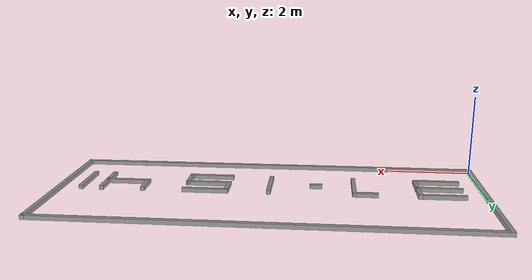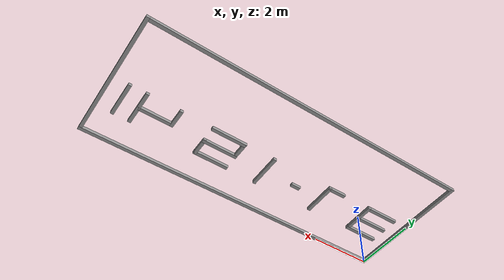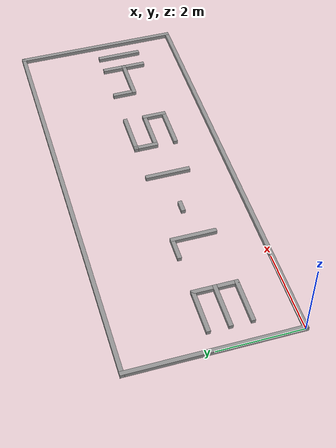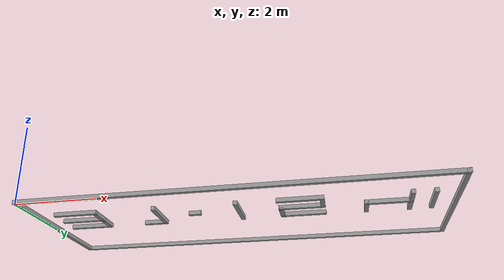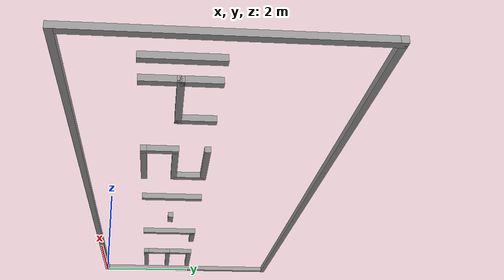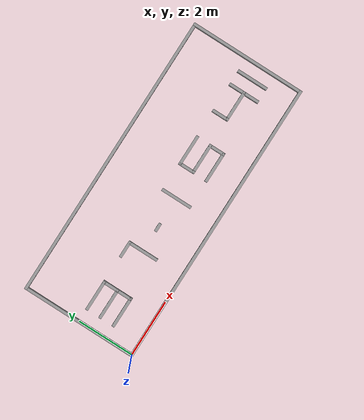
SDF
<?xml version='1.0'?>
<sdf version='1.6'>
  <model name='Mapsmall'>
    <pose frame=''>5 2 0 0 -0 0</pose>
    <link name='Wall_0'>
      <collision name='Wall_0_Collision'>
        <geometry>
          <box>
            <size>1.1 0.1 0.1</size>
          </box>
        </geometry>
        <pose frame=''>0 0 0.05 0 -0 0</pose>
      </collision>
      <visual name='Wall_0_Visual'>
        <pose frame=''>0 0 0.05 0 -0 0</pose>
        <geometry>
          <box>
            <size>1.1 0.1 0.1</size>
          </box>
        </geometry>
        <material>
          <script>
            <uri>file://media/materials/scripts/gazebo.material</uri>
            <name>Gazebo/Grey</name>
          </script>
          <ambient>1 1 1 1</ambient>
        </material>
      </visual>
      <pose frame=''>-4 0 0 0 -0 0</pose>
    </link>
    <link name='Wall_1'>
      <collision name='Wall_1_Collision'>
        <geometry>
          <box>
            <size>0.6 0.1 0.1</size>
          </box>
        </geometry>
        <pose frame=''>0 0 0.05 0 -0 0</pose>
      </collision>
      <visual name='Wall_1_Visual'>
        <pose frame=''>0 0 0.05 0 -0 0</pose>
        <geometry>
          <box>
            <size>0.6 0.1 0.1</size>
          </box>
        </geometry>
        <material>
          <script>
            <uri>file://media/materials/scripts/gazebo.material</uri>
            <name>Gazebo/Grey</name>
          </script>
          <ambient>1 1 1 1</ambient>
        </material>
      </visual>
      <pose frame=''>-3.5 -0.25 0 0 0 -1.5708</pose>
    </link>
    <link name='Wall_10'>
      <collision name='Wall_10_Collision'>
        <geometry>
          <box>
            <size>0.3 0.1 0.1</size>
          </box>
        </geometry>
        <pose frame=''>0 0 0.05 0 -0 0</pose>
      </collision>
      <visual name='Wall_10_Visual'>
        <pose frame=''>0 0 0.05 0 -0 0</pose>
        <geometry>
          <box>
            <size>0.3 0.1 0.1</size>
          </box>
        </geometry>
        <material>
          <script>
            <uri>file://media/materials/scripts/gazebo.material</uri>
            <name>Gazebo/Grey</name>
          </script>
          <ambient>1 1 1 1</ambient>
        </material>
      </visual>
      <pose frame=''>-1.1 -0.5 0 0 -0 0</pose>
    </link>
    <link name='Wall_18'>
      <collision name='Wall_18_Collision'>
        <geometry>
          <box>
            <size>0.6 0.1 0.1</size>
          </box>
        </geometry>
        <pose frame=''>0 0 0.05 0 -0 0</pose>
      </collision>
      <visual name='Wall_18_Visual'>
        <pose frame=''>0 0 0.05 0 -0 0</pose>
        <geometry>
          <box>
            <size>0.6 0.1 0.1</size>
          </box>
        </geometry>
        <material>
          <script>
            <uri>file://media/materials/scripts/gazebo.material</uri>
            <name>Gazebo/Grey</name>
          </script>
          <ambient>1 1 1 1</ambient>
        </material>
      </visual>
      <pose frame=''>3 -0.25 0 0 0 -1.5708</pose>
    </link>
    <link name='Wall_19'>
      <collision name='Wall_19_Collision'>
        <geometry>
          <box>
            <size>1.1 0.1 0.1</size>
          </box>
        </geometry>
        <pose frame=''>0 0 0.05 0 -0 0</pose>
      </collision>
      <visual name='Wall_19_Visual'>
        <pose frame=''>0 0 0.05 0 -0 0</pose>
        <geometry>
          <box>
            <size>1.1 0.1 0.1</size>
          </box>
        </geometry>
        <material>
          <script>
            <uri>file://media/materials/scripts/gazebo.material</uri>
            <name>Gazebo/Grey</name>
          </script>
          <ambient>1 1 1 1</ambient>
        </material>
      </visual>
      <pose frame=''>3.5 -0.5 0 0 -0 0</pose>
    </link>
    <link name='Wall_2'>
      <collision name='Wall_2_Collision'>
        <geometry>
          <box>
            <size>1.1 0.1 0.1</size>
          </box>
        </geometry>
        <pose frame=''>0 0 0.05 0 -0 0</pose>
      </collision>
      <visual name='Wall_2_Visual'>
        <pose frame=''>0 0 0.05 0 -0 0</pose>
        <geometry>
          <box>
            <size>1.1 0.1 0.1</size>
          </box>
        </geometry>
        <material>
          <script>
            <uri>file://media/materials/scripts/gazebo.material</uri>
            <name>Gazebo/Grey</name>
          </script>
          <ambient>1 1 1 1</ambient>
        </material>
      </visual>
      <pose frame=''>-4 -0.5 0 0 -0 3.14159</pose>
    </link>
    <link name='Wall_20'>
      <collision name='Wall_20_Collision'>
        <geometry>
          <box>
            <size>0.6 0.1 0.1</size>
          </box>
        </geometry>
        <pose frame=''>0 0 0.05 0 -0 0</pose>
      </collision>
      <visual name='Wall_20_Visual'>
        <pose frame=''>0 0 0.05 0 -0 0</pose>
        <geometry>
          <box>
            <size>0.6 0.1 0.1</size>
          </box>
        </geometry>
        <material>
          <script>
            <uri>file://media/materials/scripts/gazebo.material</uri>
            <name>Gazebo/Grey</name>
          </script>
          <ambient>1 1 1 1</ambient>
        </material>
      </visual>
      <pose frame=''>4 -0.25 0 0 -0 1.5708</pose>
    </link>
    <link name='Wall_24'>
      <collision name='Wall_24_Collision'>
        <geometry>
          <box>
            <size>1.1 0.1 0.1</size>
          </box>
        </geometry>
        <pose frame=''>0 0 0.05 0 -0 0</pose>
      </collision>
      <visual name='Wall_24_Visual'>
        <pose frame=''>0 0 0.05 0 -0 0</pose>
        <geometry>
          <box>
            <size>1.1 0.1 0.1</size>
          </box>
        </geometry>
        <material>
          <script>
            <uri>file://media/materials/scripts/gazebo.material</uri>
            <name>Gazebo/Grey</name>
          </script>
          <ambient>1 1 1 1</ambient>
        </material>
      </visual>
      <pose frame=''>0 -0.5 0 0 0 -1.5708</pose>
    </link>
    <link name='Wall_26'>
      <collision name='Wall_26_Collision'>
        <geometry>
          <box>
            <size>0.6 0.1 0.1</size>
          </box>
        </geometry>
        <pose frame=''>0 0 0.05 0 -0 0</pose>
      </collision>
      <visual name='Wall_26_Visual'>
        <pose frame=''>0 0 0.05 0 -0 0</pose>
        <geometry>
          <box>
            <size>0.6 0.1 0.1</size>
          </box>
        </geometry>
        <material>
          <script>
            <uri>file://media/materials/scripts/gazebo.material</uri>
            <name>Gazebo/Grey</name>
          </script>
          <ambient>1 1 1 1</ambient>
        </material>
      </visual>
      <pose frame=''>4 -0.25 0 0 -0 1.5708</pose>
    </link>
    <link name='Wall_28'>
      <collision name='Wall_28_Collision'>
        <geometry>
          <box>
            <size>0.6 0.1 0.1</size>
          </box>
        </geometry>
        <pose frame=''>0 0 0.05 0 -0 0</pose>
      </collision>
      <visual name='Wall_28_Visual'>
        <pose frame=''>0 0 0.05 0 -0 0</pose>
        <geometry>
          <box>
            <size>0.6 0.1 0.1</size>
          </box>
        </geometry>
        <material>
          <script>
            <uri>file://media/materials/scripts/gazebo.material</uri>
            <name>Gazebo/Grey</name>
          </script>
          <ambient>1 1 1 1</ambient>
        </material>
      </visual>
      <pose frame=''>4 -0.75 0 0 0 -1.5708</pose>
    </link>
    <link name='Wall_30'>
      <collision name='Wall_30_Collision'>
        <geometry>
          <box>
            <size>1.1 0.1 0.1</size>
          </box>
        </geometry>
        <pose frame=''>0 0 0.05 0 -0 0</pose>
      </collision>
      <visual name='Wall_30_Visual'>
        <pose frame=''>0 0 0.05 0 -0 0</pose>
        <geometry>
          <box>
            <size>1.1 0.1 0.1</size>
          </box>
        </geometry>
        <material>
          <script>
            <uri>file://media/materials/scripts/gazebo.material</uri>
            <name>Gazebo/Grey</name>
          </script>
          <ambient>1 1 1 1</ambient>
        </material>
      </visual>
      <pose frame=''>4.5 -0.5 0 0 -0 1.5708</pose>
    </link>
    <link name='Wall_32'>
      <collision name='Wall_32_Collision'>
        <geometry>
          <box>
            <size>1.1 0.1 0.1</size>
          </box>
        </geometry>
        <pose frame=''>0 0 0.05 0 -0 0</pose>
      </collision>
      <visual name='Wall_32_Visual'>
        <pose frame=''>0 0 0.05 0 -0 0</pose>
        <geometry>
          <box>
            <size>1.1 0.1 0.1</size>
          </box>
        </geometry>
        <material>
          <script>
            <uri>file://media/materials/scripts/gazebo.material</uri>
            <name>Gazebo/Grey</name>
          </script>
          <ambient>1 1 1 1</ambient>
        </material>
      </visual>
      <pose frame=''>1.5 0 0 0 -0 3.14159</pose>
    </link>
    <link name='Wall_33'>
      <collision name='Wall_33_Collision'>
        <geometry>
          <box>
            <size>0.6 0.1 0.1</size>
          </box>
        </geometry>
        <pose frame=''>0 0 0.05 0 -0 0</pose>
      </collision>
      <visual name='Wall_33_Visual'>
        <pose frame=''>0 0 0.05 0 -0 0</pose>
        <geometry>
          <box>
            <size>0.6 0.1 0.1</size>
          </box>
        </geometry>
        <material>
          <script>
            <uri>file://media/materials/scripts/gazebo.material</uri>
            <name>Gazebo/Grey</name>
          </script>
          <ambient>1 1 1 1</ambient>
        </material>
      </visual>
      <pose frame=''>1 -0.25 0 0 0 -1.5708</pose>
    </link>
    <link name='Wall_34'>
      <collision name='Wall_34_Collision'>
        <geometry>
          <box>
            <size>1.1 0.1 0.1</size>
          </box>
        </geometry>
        <pose frame=''>0 0 0.05 0 -0 0</pose>
      </collision>
      <visual name='Wall_34_Visual'>
        <pose frame=''>0 0 0.05 0 -0 0</pose>
        <geometry>
          <box>
            <size>1.1 0.1 0.1</size>
          </box>
        </geometry>
        <material>
          <script>
            <uri>file://media/materials/scripts/gazebo.material</uri>
            <name>Gazebo/Grey</name>
          </script>
          <ambient>1 1 1 1</ambient>
        </material>
      </visual>
      <pose frame=''>1.5 -0.5 0 0 -0 0</pose>
    </link>
    <link name='Wall_35'>
      <collision name='Wall_35_Collision'>
        <geometry>
          <box>
            <size>0.6 0.1 0.1</size>
          </box>
        </geometry>
        <pose frame=''>0 0 0.05 0 -0 0</pose>
      </collision>
      <visual name='Wall_35_Visual'>
        <pose frame=''>0 0 0.05 0 -0 0</pose>
        <geometry>
          <box>
            <size>0.6 0.1 0.1</size>
          </box>
        </geometry>
        <material>
          <script>
            <uri>file://media/materials/scripts/gazebo.material</uri>
            <name>Gazebo/Grey</name>
          </script>
          <ambient>1 1 1 1</ambient>
        </material>
      </visual>
      <pose frame=''>2 -0.75 0 0 0 -1.5708</pose>
    </link>
    <link name='Wall_36'>
      <collision name='Wall_36_Collision'>
        <geometry>
          <box>
            <size>1.1 0.1 0.1</size>
          </box>
        </geometry>
        <pose frame=''>0 0 0.05 0 -0 0</pose>
      </collision>
      <visual name='Wall_36_Visual'>
        <pose frame=''>0 0 0.05 0 -0 0</pose>
        <geometry>
          <box>
            <size>1.1 0.1 0.1</size>
          </box>
        </geometry>
        <material>
          <script>
            <uri>file://media/materials/scripts/gazebo.material</uri>
            <name>Gazebo/Grey</name>
          </script>
          <ambient>1 1 1 1</ambient>
        </material>
      </visual>
      <pose frame=''>1.5 -1 0 0 -0 3.14159</pose>
    </link>
    <link name='Wall_38'>
      <collision name='Wall_38_Collision'>
        <geometry>
          <box>
            <size>10.1 0.1 0.1</size>
          </box>
        </geometry>
        <pose frame=''>0 0 0.05 0 -0 0</pose>
      </collision>
      <visual name='Wall_38_Visual'>
        <pose frame=''>0 0 0.05 0 -0 0</pose>
        <geometry>
          <box>
            <size>10.1 0.1 0.1</size>
          </box>
        </geometry>
        <material>
          <script>
            <uri>file://media/materials/scripts/gazebo.material</uri>
            <name>Gazebo/Grey</name>
          </script>
          <ambient>1 1 1 1</ambient>
        </material>
      </visual>
      <pose frame=''>0 -2 0 0 -0 0</pose>
    </link>
    <link name='Wall_39'>
      <collision name='Wall_39_Collision'>
        <geometry>
          <box>
            <size>4.1 0.1 0.1</size>
          </box>
        </geometry>
        <pose frame=''>0 0 0.05 0 -0 0</pose>
      </collision>
      <visual name='Wall_39_Visual'>
        <pose frame=''>0 0 0.05 0 -0 0</pose>
        <geometry>
          <box>
            <size>4.1 0.1 0.1</size>
          </box>
        </geometry>
        <material>
          <script>
            <uri>file://media/materials/scripts/gazebo.material</uri>
            <name>Gazebo/Grey</name>
          </script>
          <ambient>1 1 1 1</ambient>
        </material>
      </visual>
      <pose frame=''>5 0 0 0 -0 1.5708</pose>
    </link>
    <link name='Wall_4'>
      <collision name='Wall_4_Collision'>
        <geometry>
          <box>
            <size>0.6 0.1 0.1</size>
          </box>
        </geometry>
        <pose frame=''>0 0 0.05 0 -0 0</pose>
      </collision>
      <visual name='Wall_4_Visual'>
        <pose frame=''>0 0 0.05 0 -0 0</pose>
        <geometry>
          <box>
            <size>0.6 0.1 0.1</size>
          </box>
        </geometry>
        <material>
          <script>
            <uri>file://media/materials/scripts/gazebo.material</uri>
            <name>Gazebo/Grey</name>
          </script>
          <ambient>1 1 1 1</ambient>
        </material>
      </visual>
      <pose frame=''>-3.5 -0.75 0 0 0 -1.5708</pose>
    </link>
    <link name='Wall_40'>
      <collision name='Wall_40_Collision'>
        <geometry>
          <box>
            <size>10.1 0.1 0.1</size>
          </box>
        </geometry>
        <pose frame=''>0 0 0.05 0 -0 0</pose>
      </collision>
      <visual name='Wall_40_Visual'>
        <pose frame=''>0 0 0.05 0 -0 0</pose>
        <geometry>
          <box>
            <size>10.1 0.1 0.1</size>
          </box>
        </geometry>
        <material>
          <script>
            <uri>file://media/materials/scripts/gazebo.material</uri>
            <name>Gazebo/Grey</name>
          </script>
          <ambient>1 1 1 1</ambient>
        </material>
      </visual>
      <pose frame=''>0 2 0 0 -0 3.14159</pose>
    </link>
    <link name='Wall_41'>
      <collision name='Wall_41_Collision'>
        <geometry>
          <box>
            <size>4.1 0.1 0.1</size>
          </box>
        </geometry>
        <pose frame=''>0 0 0.05 0 -0 0</pose>
      </collision>
      <visual name='Wall_41_Visual'>
        <pose frame=''>0 0 0.05 0 -0 0</pose>
        <geometry>
          <box>
            <size>4.1 0.1 0.1</size>
          </box>
        </geometry>
        <material>
          <script>
            <uri>file://media/materials/scripts/gazebo.material</uri>
            <name>Gazebo/Grey</name>
          </script>
          <ambient>1 1 1 1</ambient>
        </material>
      </visual>
      <pose frame=''>-5 0 0 0 0 -1.5708</pose>
    </link>
    <link name='Wall_5'>
      <collision name='Wall_5_Collision'>
        <geometry>
          <box>
            <size>1.1 0.1 0.1</size>
          </box>
        </geometry>
        <pose frame=''>0 0 0.05 0 -0 0</pose>
      </collision>
      <visual name='Wall_5_Visual'>
        <pose frame=''>0 0 0.05 0 -0 0</pose>
        <geometry>
          <box>
            <size>1.1 0.1 0.1</size>
          </box>
        </geometry>
        <material>
          <script>
            <uri>file://media/materials/scripts/gazebo.material</uri>
            <name>Gazebo/Grey</name>
          </script>
          <ambient>1 1 1 1</ambient>
        </material>
      </visual>
      <pose frame=''>-4 -1 0 0 -0 3.14159</pose>
    </link>
    <link name='Wall_7'>
      <collision name='Wall_7_Collision'>
        <geometry>
          <box>
            <size>0.6 0.1 0.1</size>
          </box>
        </geometry>
        <pose frame=''>0 0 0.05 0 -0 0</pose>
      </collision>
      <visual name='Wall_7_Visual'>
        <pose frame=''>0 0 0.05 0 -0 0</pose>
        <geometry>
          <box>
            <size>0.6 0.1 0.1</size>
          </box>
        </geometry>
        <material>
          <script>
            <uri>file://media/materials/scripts/gazebo.material</uri>
            <name>Gazebo/Grey</name>
          </script>
          <ambient>1 1 1 1</ambient>
        </material>
      </visual>
      <pose frame=''>-2.25 0 0 0 -0 0</pose>
    </link>
    <link name='Wall_8'>
      <collision name='Wall_8_Collision'>
        <geometry>
          <box>
            <size>1.1 0.1 0.1</size>
          </box>
        </geometry>
        <pose frame=''>0 0 0.05 0 -0 0</pose>
      </collision>
      <visual name='Wall_8_Visual'>
        <pose frame=''>0 0 0.05 0 -0 0</pose>
        <geometry>
          <box>
            <size>1.1 0.1 0.1</size>
          </box>
        </geometry>
        <material>
          <script>
            <uri>file://media/materials/scripts/gazebo.material</uri>
            <name>Gazebo/Grey</name>
          </script>
          <ambient>1 1 1 1</ambient>
        </material>
      </visual>
      <pose frame=''>-2 -0.5 0 0 0 -1.5708</pose>
    </link>
    <static>1</static>
  </model>
</sdf>
